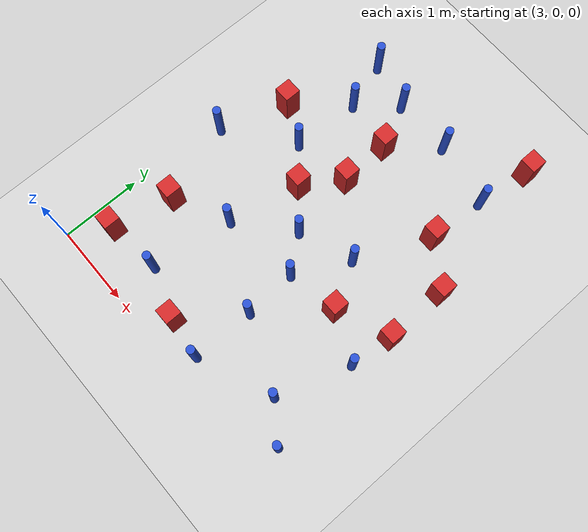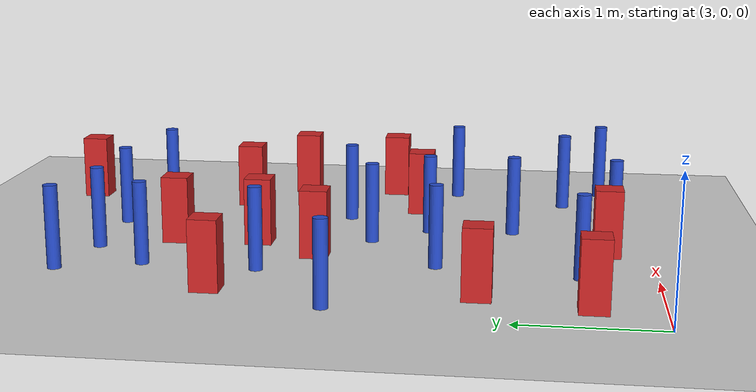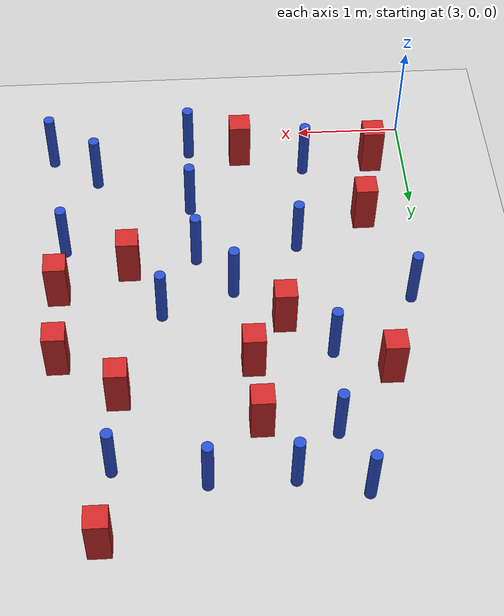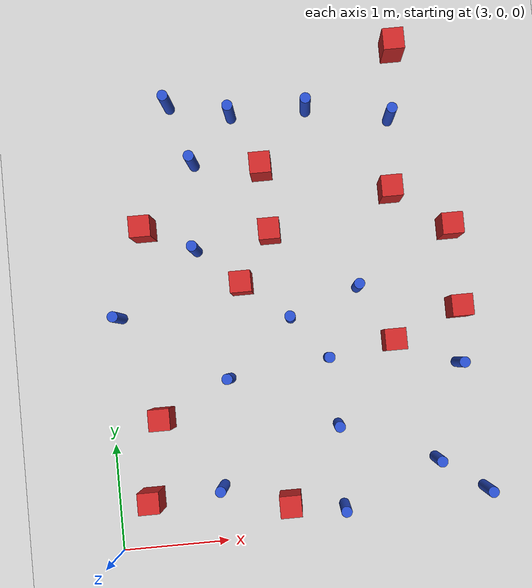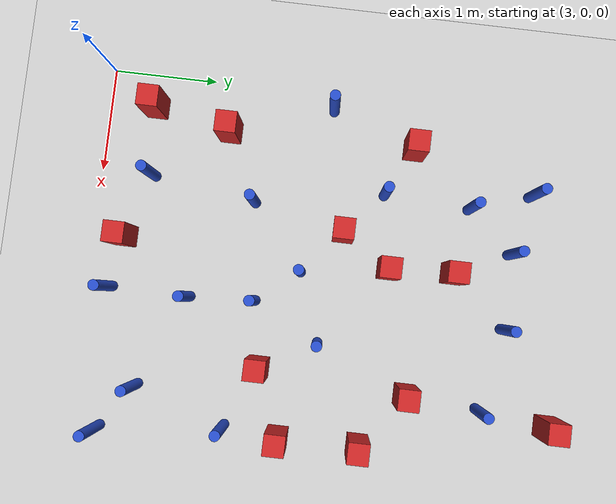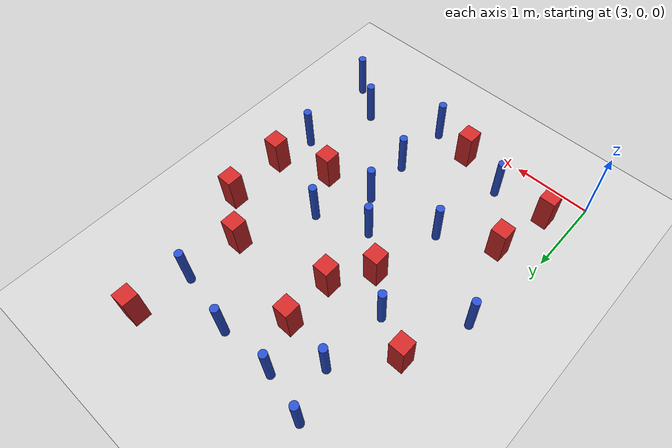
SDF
<sdf version="1.6">
 <world name="default">
  <model name="ground_plane">
   <static>1</static>
   <link name="link">
    <collision name="collision">
     <geometry><plane><normal>0 0 1</normal><size>100 100</size></plane></geometry>
     <surface><friction><ode><mu>100</mu><mu2>50</mu2></ode></friction></surface>
    </collision>
    <visual name="visual">
     <cast_shadows>0</cast_shadows>
     <geometry><plane><normal>0 0 1</normal><size>100 100</size></plane></geometry>
     <material>
      <ambient>1.0 1.0 1.0 1.0</ambient>
      <diffuse>0.8 0.8 0.8 1.0</diffuse>
      <specular>0.01 0.01 0.01 1.000000</specular>
     </material>
    </visual>
   </link>
  </model>
  <model name="pole_obstacle1">
   <static>true</static>
   <pose>3.98084149001 3.61252050977 7.38925637345e-09 -8.47170692796e-08 1.24976764765e-08 -1.74513093035e-07</pose>
   <link name="link">
    <pose>0 0 0.3 0 -0 0</pose>
    <inertial>
     <mass>1</mass>
     <inertia><ixx>0.145833</ixx><ixy>0</ixy><ixz>0</ixz><iyy>0.145833</iyy><iyz>0</iyz><izz>0.125</izz></inertia>
    </inertial>
    <collision name="collision">
     <geometry><cylinder><radius>0.05</radius><length>.6</length></cylinder></geometry>
    </collision>
    <visual name="visual">
     <geometry><cylinder><radius>0.05</radius><length>.6</length></cylinder></geometry>
     <material>
      <script><name>Gazebo/Blue</name><uri>file://media/materials/scripts/gazebo.material</uri></script>
     </material>
    </visual>
   </link>
  </model>
  <model name="pole_obstacle3">
   <static>true</static>
   <pose>5.4384488271 2.29469536156 7.38925637345e-09 -8.47170692798e-08 1.24976764937e-08 -1.74513093023e-07</pose>
   <link name="link">
    <pose>0 0 0.3 0 -0 0</pose>
    <inertial>
     <mass>1</mass>
     <inertia><ixx>0.145833</ixx><ixy>0</ixy><ixz>0</ixz><iyy>0.145833</iyy><iyz>0</iyz><izz>0.125</izz></inertia>
    </inertial>
    <collision name="collision">
     <geometry><cylinder><radius>0.05</radius><length>.6</length></cylinder></geometry>
    </collision>
    <visual name="visual">
     <geometry><cylinder><radius>0.05</radius><length>.6</length></cylinder></geometry>
     <material>
      <script><name>Gazebo/Blue</name><uri>file://media/materials/scripts/gazebo.material</uri></script>
     </material>
    </visual>
   </link>
  </model>
  <model name="pole_obstacle8">
   <static>true</static>
   <pose>4.77809851453 2.05592720037 7.38925637345e-09 -8.47170692798e-08 1.24976764937e-08 -1.74513093023e-07</pose>
   <link name="link">
    <pose>0 0 0.3 0 -0 0</pose>
    <inertial>
     <mass>1</mass>
     <inertia><ixx>0.145833</ixx><ixy>0</ixy><ixz>0</ixz><iyy>0.145833</iyy><iyz>0</iyz><izz>0.125</izz></inertia>
    </inertial>
    <collision name="collision">
     <geometry><cylinder><radius>0.05</radius><length>.6</length></cylinder></geometry>
    </collision>
    <visual name="visual">
     <geometry><cylinder><radius>0.05</radius><length>.6</length></cylinder></geometry>
     <material>
      <script><name>Gazebo/Blue</name><uri>file://media/materials/scripts/gazebo.material</uri></script>
     </material>
    </visual>
   </link>
  </model>
  <model name="pole_obstacle20">
   <static>true</static>
   <pose>4.3760066803 4.04789300603 7.38925637345e-09 -8.47170692797e-08 1.24976764805e-08 -1.74513093031e-07</pose>
   <link name="link">
    <pose>0 0 0.3 0 -0 0</pose>
    <inertial>
     <mass>1</mass>
     <inertia><ixx>0.145833</ixx><ixy>0</ixy><ixz>0</ixz><iyy>0.145833</iyy><iyz>0</iyz><izz>0.125</izz></inertia>
    </inertial>
    <collision name="collision">
     <geometry><cylinder><radius>0.05</radius><length>.6</length></cylinder></geometry>
    </collision>
    <visual name="visual">
     <geometry><cylinder><radius>0.05</radius><length>.6</length></cylinder></geometry>
     <material>
      <script><name>Gazebo/Blue</name><uri>file://media/materials/scripts/gazebo.material</uri></script>
     </material>
    </visual>
   </link>
  </model>
  <model name="pole_obstacle23">
   <static>true</static>
   <pose>5.12781670834 0.2467637631 7.38925637345e-09 -8.471706928e-08 1.24976765136e-08 -1.74513093014e-07</pose>
   <link name="link">
    <pose>0 0 0.3 0 -0 0</pose>
    <inertial>
     <mass>1</mass>
     <inertia><ixx>0.145833</ixx><ixy>0</ixy><ixz>0</ixz><iyy>0.145833</iyy><iyz>0</iyz><izz>0.125</izz></inertia>
    </inertial>
    <collision name="collision">
     <geometry><cylinder><radius>0.05</radius><length>.6</length></cylinder></geometry>
    </collision>
    <visual name="visual">
     <geometry><cylinder><radius>0.05</radius><length>.6</length></cylinder></geometry>
     <material>
      <script><name>Gazebo/Blue</name><uri>file://media/materials/scripts/gazebo.material</uri></script>
     </material>
    </visual>
   </link>
  </model>
  <model name="pole_obstacle32">
   <static>true</static>
   <pose>3.78894810011 4.19484692477 7.38925637345e-09 -8.47170692798e-08 1.24976765033e-08 -1.74513093019e-07</pose>
   <link name="link">
    <pose>0 0 0.3 0 -0 0</pose>
    <inertial>
     <mass>1</mass>
     <inertia><ixx>0.145833</ixx><ixy>0</ixy><ixz>0</ixz><iyy>0.145833</iyy><iyz>0</iyz><izz>0.125</izz></inertia>
    </inertial>
    <collision name="collision">
     <geometry><cylinder><radius>0.05</radius><length>.6</length></cylinder></geometry>
    </collision>
    <visual name="visual">
     <geometry><cylinder><radius>0.05</radius><length>.6</length></cylinder></geometry>
     <material>
      <script><name>Gazebo/Blue</name><uri>file://media/materials/scripts/gazebo.material</uri></script>
     </material>
    </visual>
   </link>
  </model>
  <model name="pole_obstacle37">
   <static>true</static>
   <pose>6.03336174047 0.614249148344 7.38925637345e-09 -8.47170692799e-08 1.24976765038e-08 -1.74513093018e-07</pose>
   <link name="link">
    <pose>0 0 0.3 0 -0 0</pose>
    <inertial>
     <mass>1</mass>
     <inertia><ixx>0.145833</ixx><ixy>0</ixy><ixz>0</ixz><iyy>0.145833</iyy><iyz>0</iyz><izz>0.125</izz></inertia>
    </inertial>
    <collision name="collision">
     <geometry><cylinder><radius>0.05</radius><length>.6</length></cylinder></geometry>
    </collision>
    <visual name="visual">
     <geometry><cylinder><radius>0.05</radius><length>.6</length></cylinder></geometry>
     <material>
      <script><name>Gazebo/Blue</name><uri>file://media/materials/scripts/gazebo.material</uri></script>
     </material>
    </visual>
   </link>
  </model>
  <model name="square_post_obstacle50">
   <static>true</static>
   <pose>5.73080261002 1.75885919843 1.91545236811e-07 -7.35059704564e-06 1.12565212e-07 2.39332434364e-05</pose>
   <link name="link">
    <pose>0 0 0.25 0 -0 0</pose>
    <inertial>
     <mass>100</mass>
     <inertia>
      <ixx>0.166667</ixx>
      <ixy>0</ixy>
      <ixz>0</ixz>
      <iyy>0.166667</iyy>
      <iyz>0</iyz>
      <izz>0.166667</izz>
     </inertia>
    </inertial>
    <collision name="collision"><geometry><box><size>.2 .2 .5</size></box></geometry></collision>
    <visual name="visual">
     <geometry><box><size>.2 .2 .5</size></box></geometry>
     <material>
      <script><name>Gazebo/Red</name><uri>file://media/materials/scripts/gazebo.material</uri></script>
     </material>
    </visual>
   </link>
  </model>
  <model name="square_post_obstacle63">
   <static>true</static>
   <pose>4.6258231345 3.51111614195 1.91545236811e-07 -7.35059704564e-06 1.12565212e-07 2.39332434364e-05</pose>
   <link name="link">
    <pose>0 0 0.25 0 -0 0</pose>
    <inertial>
     <mass>100</mass>
     <inertia>
      <ixx>0.166667</ixx>
      <ixy>0</ixy>
      <ixz>0</ixz>
      <iyy>0.166667</iyy>
      <iyz>0</iyz>
      <izz>0.166667</izz>
     </inertia>
    </inertial>
    <collision name="collision"><geometry><box><size>.2 .2 .5</size></box></geometry></collision>
    <visual name="visual">
     <geometry><box><size>.2 .2 .5</size></box></geometry>
     <material>
      <script><name>Gazebo/Red</name><uri>file://media/materials/scripts/gazebo.material</uri></script>
     </material>
    </visual>
   </link>
  </model>
  <model name="pole_obstacle85">
   <static>true</static>
   <pose>6.3256194911 1.49275839835 7.38925637345e-09 -8.471706928e-08 1.24976765134e-08 -1.74513093015e-07</pose>
   <link name="link">
    <pose>0 0 0.3 0 -0 0</pose>
    <inertial>
     <mass>1</mass>
     <inertia><ixx>0.145833</ixx><ixy>0</ixy><ixz>0</ixz><iyy>0.145833</iyy><iyz>0</iyz><izz>0.125</izz></inertia>
    </inertial>
    <collision name="collision">
     <geometry><cylinder><radius>0.05</radius><length>.6</length></cylinder></geometry>
    </collision>
    <visual name="visual">
     <geometry><cylinder><radius>0.05</radius><length>.6</length></cylinder></geometry>
     <material>
      <script><name>Gazebo/Blue</name><uri>file://media/materials/scripts/gazebo.material</uri></script>
     </material>
    </visual>
   </link>
  </model>
  <model name="pole_obstacle91">
   <static>true</static>
   <pose>5.89141662045 3.88491265827 7.38925637345e-09 -8.47170692798e-08 1.24976764937e-08 -1.74513093023e-07</pose>
   <link name="link">
    <pose>0 0 0.3 0 -0 0</pose>
    <inertial>
     <mass>1</mass>
     <inertia><ixx>0.145833</ixx><ixy>0</ixy><ixz>0</ixz><iyy>0.145833</iyy><iyz>0</iyz><izz>0.125</izz></inertia>
    </inertial>
    <collision name="collision">
     <geometry><cylinder><radius>0.05</radius><length>.6</length></cylinder></geometry>
    </collision>
    <visual name="visual">
     <geometry><cylinder><radius>0.05</radius><length>.6</length></cylinder></geometry>
     <material>
      <script><name>Gazebo/Blue</name><uri>file://media/materials/scripts/gazebo.material</uri></script>
     </material>
    </visual>
   </link>
  </model>
  <model name="pole_obstacle115">
   <static>true</static>
   <pose>4.00736310543 0.528504930025 7.38925637345e-09 -8.471706928e-08 1.2497676511e-08 -1.74513093016e-07</pose>
   <link name="link">
    <pose>0 0 0.3 0 -0 0</pose>
    <inertial>
     <mass>1</mass>
     <inertia><ixx>0.145833</ixx><ixy>0</ixy><ixz>0</ixz><iyy>0.145833</iyy><iyz>0</iyz><izz>0.125</izz></inertia>
    </inertial>
    <collision name="collision">
     <geometry><cylinder><radius>0.05</radius><length>.6</length></cylinder></geometry>
    </collision>
    <visual name="visual">
     <geometry><cylinder><radius>0.05</radius><length>.6</length></cylinder></geometry>
     <material>
      <script><name>Gazebo/Blue</name><uri>file://media/materials/scripts/gazebo.material</uri></script>
     </material>
    </visual>
   </link>
  </model>
  <model name="pole_obstacle133">
   <static>true</static>
   <pose>3.16274019417 2.19906786334 7.38925637345e-09 -8.47170692798e-08 1.24976764939e-08 -1.74513093025e-07</pose>
   <link name="link">
    <pose>0 0 0.3 0 -0 0</pose>
    <inertial>
     <mass>1</mass>
     <inertia><ixx>0.145833</ixx><ixy>0</ixy><ixz>0</ixz><iyy>0.145833</iyy><iyz>0</iyz><izz>0.125</izz></inertia>
    </inertial>
    <collision name="collision">
     <geometry><cylinder><radius>0.05</radius><length>.6</length></cylinder></geometry>
    </collision>
    <visual name="visual">
     <geometry><cylinder><radius>0.05</radius><length>.6</length></cylinder></geometry>
     <material>
      <script><name>Gazebo/Blue</name><uri>file://media/materials/scripts/gazebo.material</uri></script>
     </material>
    </visual>
   </link>
  </model>
  <model name="square_post_obstacle120">
   <static>true</static>
   <pose>4.65402330186 2.88882644161 1.91545236811e-07 -7.35059704564e-06 1.12565212e-07 2.39332434364e-05</pose>
   <link name="link">
    <pose>0 0 0.25 0 -0 0</pose>
    <inertial>
     <mass>100</mass>
     <inertia>
      <ixx>0.166667</ixx>
      <ixy>0</ixy>
      <ixz>0</ixz>
      <iyy>0.166667</iyy>
      <iyz>0</iyz>
      <izz>0.166667</izz>
     </inertia>
    </inertial>
    <collision name="collision"><geometry><box><size>.2 .2 .5</size></box></geometry></collision>
    <visual name="visual">
     <geometry><box><size>.2 .2 .5</size></box></geometry>
     <material>
      <script><name>Gazebo/Red</name><uri>file://media/materials/scripts/gazebo.material</uri></script>
     </material>
    </visual>
   </link>
  </model>
  <model name="square_post_obstacle121">
   <static>true</static>
   <pose>4.62570567041 0.323611549352 1.91545236811e-07 -7.35059704564e-06 1.12565212e-07 2.39332434364e-05</pose>
   <link name="link">
    <pose>0 0 0.25 0 -0 0</pose>
    <inertial>
     <mass>100</mass>
     <inertia>
      <ixx>0.166667</ixx>
      <ixy>0</ixy>
      <ixz>0</ixz>
      <iyy>0.166667</iyy>
      <iyz>0</iyz>
      <izz>0.166667</izz>
     </inertia>
    </inertial>
    <collision name="collision"><geometry><box><size>.2 .2 .5</size></box></geometry></collision>
    <visual name="visual">
     <geometry><box><size>.2 .2 .5</size></box></geometry>
     <material>
      <script><name>Gazebo/Red</name><uri>file://media/materials/scripts/gazebo.material</uri></script>
     </material>
    </visual>
   </link>
  </model>
  <model name="square_post_obstacle123">
   <static>true</static>
   <pose>3.49149145456 1.2186937029 1.91545236811e-07 -7.35059704564e-06 1.12565212e-07 2.39332434364e-05</pose>
   <link name="link">
    <pose>0 0 0.25 0 -0 0</pose>
    <inertial>
     <mass>100</mass>
     <inertia>
      <ixx>0.166667</ixx>
      <ixy>0</ixy>
      <ixz>0</ixz>
      <iyy>0.166667</iyy>
      <iyz>0</iyz>
      <izz>0.166667</izz>
     </inertia>
    </inertial>
    <collision name="collision"><geometry><box><size>.2 .2 .5</size></box></geometry></collision>
    <visual name="visual">
     <geometry><box><size>.2 .2 .5</size></box></geometry>
     <material>
      <script><name>Gazebo/Red</name><uri>file://media/materials/scripts/gazebo.material</uri></script>
     </material>
    </visual>
   </link>
  </model>
  <model name="square_post_obstacle130">
   <static>true</static>
   <pose>3.45976915127 3.0179653798 1.91545236811e-07 -7.35059704564e-06 1.12565212e-07 2.39332434364e-05</pose>
   <link name="link">
    <pose>0 0 0.25 0 -0 0</pose>
    <inertial>
     <mass>100</mass>
     <inertia>
      <ixx>0.166667</ixx>
      <ixy>0</ixy>
      <ixz>0</ixz>
      <iyy>0.166667</iyy>
      <iyz>0</iyz>
      <izz>0.166667</izz>
     </inertia>
    </inertial>
    <collision name="collision"><geometry><box><size>.2 .2 .5</size></box></geometry></collision>
    <visual name="visual">
     <geometry><box><size>.2 .2 .5</size></box></geometry>
     <material>
      <script><name>Gazebo/Red</name><uri>file://media/materials/scripts/gazebo.material</uri></script>
     </material>
    </visual>
   </link>
  </model>
  <model name="square_post_obstacle135">
   <static>true</static>
   <pose>5.83225883947 3.18259872906 1.91545236811e-07 -7.35059704564e-06 1.12565212e-07 2.39332434364e-05</pose>
   <link name="link">
    <pose>0 0 0.25 0 -0 0</pose>
    <inertial>
     <mass>100</mass>
     <inertia>
      <ixx>0.166667</ixx>
      <ixy>0</ixy>
      <ixz>0</ixz>
      <iyy>0.166667</iyy>
      <iyz>0</iyz>
      <izz>0.166667</izz>
     </inertia>
    </inertial>
    <collision name="collision"><geometry><box><size>.2 .2 .5</size></box></geometry></collision>
    <visual name="visual">
     <geometry><box><size>.2 .2 .5</size></box></geometry>
     <material>
      <script><name>Gazebo/Red</name><uri>file://media/materials/scripts/gazebo.material</uri></script>
     </material>
    </visual>
   </link>
  </model>
  <model name="square_post_obstacle145">
   <static>true</static>
   <pose>6.37362215503 2.01728964469 1.91545236811e-07 -7.35059704564e-06 1.12565212e-07 2.39332434364e-05</pose>
   <link name="link">
    <pose>0 0 0.25 0 -0 0</pose>
    <inertial>
     <mass>100</mass>
     <inertia>
      <ixx>0.166667</ixx>
      <ixy>0</ixy>
      <ixz>0</ixz>
      <iyy>0.166667</iyy>
      <iyz>0</iyz>
      <izz>0.166667</izz>
     </inertia>
    </inertial>
    <collision name="collision"><geometry><box><size>.2 .2 .5</size></box></geometry></collision>
    <visual name="visual">
     <geometry><box><size>.2 .2 .5</size></box></geometry>
     <material>
      <script><name>Gazebo/Red</name><uri>file://media/materials/scripts/gazebo.material</uri></script>
     </material>
    </visual>
   </link>
  </model>
  <model name="pole_obstacle165">
   <static>true</static>
   <pose>5.10457310444 1.64807526347 7.38925637345e-09 -8.471706928e-08 1.24976765134e-08 -1.74513093015e-07</pose>
   <link name="link">
    <pose>0 0 0.3 0 -0 0</pose>
    <inertial>
     <mass>1</mass>
     <inertia><ixx>0.145833</ixx><ixy>0</ixy><ixz>0</ixz><iyy>0.145833</iyy><iyz>0</iyz><izz>0.125</izz></inertia>
    </inertial>
    <collision name="collision">
     <geometry><cylinder><radius>0.05</radius><length>.6</length></cylinder></geometry>
    </collision>
    <visual name="visual">
     <geometry><cylinder><radius>0.05</radius><length>.6</length></cylinder></geometry>
     <material>
      <script><name>Gazebo/Blue</name><uri>file://media/materials/scripts/gazebo.material</uri></script>
     </material>
    </visual>
   </link>
  </model>
  <model name="square_post_obstacle158">
   <static>true</static>
   <pose>4.34555970811 2.42175448457 1.91545236811e-07 -7.35059704564e-06 1.12565212e-07 2.39332434364e-05</pose>
   <link name="link">
    <pose>0 0 0.25 0 -0 0</pose>
    <inertial>
     <mass>100</mass>
     <inertia>
      <ixx>0.166667</ixx>
      <ixy>0</ixy>
      <ixz>0</ixz>
      <iyy>0.166667</iyy>
      <iyz>0</iyz>
      <izz>0.166667</izz>
     </inertia>
    </inertial>
    <collision name="collision"><geometry><box><size>.2 .2 .5</size></box></geometry></collision>
    <visual name="visual">
     <geometry><box><size>.2 .2 .5</size></box></geometry>
     <material>
      <script><name>Gazebo/Red</name><uri>file://media/materials/scripts/gazebo.material</uri></script>
     </material>
    </visual>
   </link>
  </model>
  <model name="pole_obstacle174">
   <static>true</static>
   <pose>6.46815128285 0.300603092539 7.38925637345e-09 -8.47170692798e-08 1.24976765003e-08 -1.7451309302e-07</pose>
   <link name="link">
    <pose>0 0 0.3 0 -0 0</pose>
    <inertial>
     <mass>1</mass>
     <inertia><ixx>0.145833</ixx><ixy>0</ixy><ixz>0</ixz><iyy>0.145833</iyy><iyz>0</iyz><izz>0.125</izz></inertia>
    </inertial>
    <collision name="collision">
     <geometry><cylinder><radius>0.05</radius><length>.6</length></cylinder></geometry>
    </collision>
    <visual name="visual">
     <geometry><cylinder><radius>0.05</radius><length>.6</length></cylinder></geometry>
     <material>
      <script><name>Gazebo/Blue</name><uri>file://media/materials/scripts/gazebo.material</uri></script>
     </material>
    </visual>
   </link>
  </model>
  <model name="pole_obstacle183">
   <static>true</static>
   <pose>5.10223335983 4.04952868877 7.38925637345e-09 -8.47170692797e-08 1.24976764805e-08 -1.74513093031e-07</pose>
   <link name="link">
    <pose>0 0 0.3 0 -0 0</pose>
    <inertial>
     <mass>1</mass>
     <inertia><ixx>0.145833</ixx><ixy>0</ixy><ixz>0</ixz><iyy>0.145833</iyy><iyz>0</iyz><izz>0.125</izz></inertia>
    </inertial>
    <collision name="collision">
     <geometry><cylinder><radius>0.05</radius><length>.6</length></cylinder></geometry>
    </collision>
    <visual name="visual">
     <geometry><cylinder><radius>0.05</radius><length>.6</length></cylinder></geometry>
     <material>
      <script><name>Gazebo/Blue</name><uri>file://media/materials/scripts/gazebo.material</uri></script>
     </material>
    </visual>
   </link>
  </model>
  <model name="square_post_obstacle176">
   <static>true</static>
   <pose>5.97770674832 4.5587330106 1.91545236811e-07 -7.35059704564e-06 1.12565212e-07 2.39332434364e-05</pose>
   <link name="link">
    <pose>0 0 0.25 0 -0 0</pose>
    <inertial>
     <mass>100</mass>
     <inertia>
      <ixx>0.166667</ixx>
      <ixy>0</ixy>
      <ixz>0</ixz>
      <iyy>0.166667</iyy>
      <iyz>0</iyz>
      <izz>0.166667</izz>
     </inertia>
    </inertial>
    <collision name="collision"><geometry><box><size>.2 .2 .5</size></box></geometry></collision>
    <visual name="visual">
     <geometry><box><size>.2 .2 .5</size></box></geometry>
     <material>
      <script><name>Gazebo/Red</name><uri>file://media/materials/scripts/gazebo.material</uri></script>
     </material>
    </visual>
   </link>
  </model>
  <model name="square_post_obstacle178">
   <static>true</static>
   <pose>6.35876259646 2.78207337924 1.91545236811e-07 -7.35059704564e-06 1.12565212e-07 2.39332434364e-05</pose>
   <link name="link">
    <pose>0 0 0.25 0 -0 0</pose>
    <inertial>
     <mass>100</mass>
     <inertia>
      <ixx>0.166667</ixx>
      <ixy>0</ixy>
      <ixz>0</ixz>
      <iyy>0.166667</iyy>
      <iyz>0</iyz>
      <izz>0.166667</izz>
     </inertia>
    </inertial>
    <collision name="collision"><geometry><box><size>.2 .2 .5</size></box></geometry></collision>
    <visual name="visual">
     <geometry><box><size>.2 .2 .5</size></box></geometry>
     <material>
      <script><name>Gazebo/Red</name><uri>file://media/materials/scripts/gazebo.material</uri></script>
     </material>
    </visual>
   </link>
  </model>
  <model name="square_post_obstacle197">
   <static>true</static>
   <pose>3.3317437777 0.470663351585 1.91545236811e-07 -7.35059704564e-06 1.12565212e-07 2.39332434364e-05</pose>
   <link name="link">
    <pose>0 0 0.25 0 -0 0</pose>
    <inertial>
     <mass>100</mass>
     <inertia>
      <ixx>0.166667</ixx>
      <ixy>0</ixy>
      <ixz>0</ixz>
      <iyy>0.166667</iyy>
      <iyz>0</iyz>
      <izz>0.166667</izz>
     </inertia>
    </inertial>
    <collision name="collision"><geometry><box><size>.2 .2 .5</size></box></geometry></collision>
    <visual name="visual">
     <geometry><box><size>.2 .2 .5</size></box></geometry>
     <material>
      <script><name>Gazebo/Red</name><uri>file://media/materials/scripts/gazebo.material</uri></script>
     </material>
    </visual>
   </link>
  </model>
  <model name="pole_obstacle199">
   <static>true</static>
   <pose>3.93787657504 2.77943659034 7.38925637345e-09 -8.47170692798e-08 1.24976764939e-08 -1.74513093025e-07</pose>
   <link name="link">
    <pose>0 0 0.3 0 -0 0</pose>
    <inertial>
     <mass>1</mass>
     <inertia><ixx>0.145833</ixx><ixy>0</ixy><ixz>0</ixz><iyy>0.145833</iyy><iyz>0</iyz><izz>0.125</izz></inertia>
    </inertial>
    <collision name="collision">
     <geometry><cylinder><radius>0.05</radius><length>.6</length></cylinder></geometry>
    </collision>
    <visual name="visual">
     <geometry><cylinder><radius>0.05</radius><length>.6</length></cylinder></geometry>
     <material>
      <script><name>Gazebo/Blue</name><uri>file://media/materials/scripts/gazebo.material</uri></script>
     </material>
    </visual>
   </link>
  </model>
  <model name="pole_obstacle209">
   <static>true</static>
   <pose>5.13895842581 1.01184223365 7.38925637345e-09 -8.47170692801e-08 1.24976765139e-08 -1.74513093014e-07</pose>
   <link name="link">
    <pose>0 0 0.3 0 -0 0</pose>
    <inertial>
     <mass>1</mass>
     <inertia><ixx>0.145833</ixx><ixy>0</ixy><ixz>0</ixz><iyy>0.145833</iyy><iyz>0</iyz><izz>0.125</izz></inertia>
    </inertial>
    <collision name="collision">
     <geometry><cylinder><radius>0.05</radius><length>.6</length></cylinder></geometry>
    </collision>
    <visual name="visual">
     <geometry><cylinder><radius>0.05</radius><length>.6</length></cylinder></geometry>
     <material>
      <script><name>Gazebo/Blue</name><uri>file://media/materials/scripts/gazebo.material</uri></script>
     </material>
    </visual>
   </link>
  </model>
  <model name="pole_obstacle243">
   <static>true</static>
   <pose>4.15506000957 1.53575002078 7.38925637345e-09 -8.471706928e-08 1.24976765143e-08 -1.74513093015e-07</pose>
   <link name="link">
    <pose>0 0 0.3 0 -0 0</pose>
    <inertial>
     <mass>1</mass>
     <inertia><ixx>0.145833</ixx><ixy>0</ixy><ixz>0</ixz><iyy>0.145833</iyy><iyz>0</iyz><izz>0.125</izz></inertia>
    </inertial>
    <collision name="collision">
     <geometry><cylinder><radius>0.05</radius><length>.6</length></cylinder></geometry>
    </collision>
    <visual name="visual">
     <geometry><cylinder><radius>0.05</radius><length>.6</length></cylinder></geometry>
     <material>
      <script><name>Gazebo/Blue</name><uri>file://media/materials/scripts/gazebo.material</uri></script>
     </material>
    </visual>
   </link>
  </model>
 </world>
</sdf>
